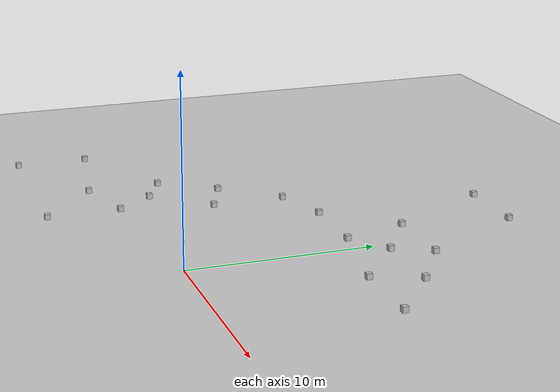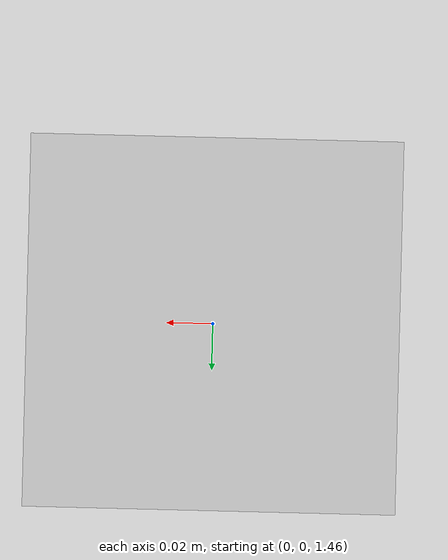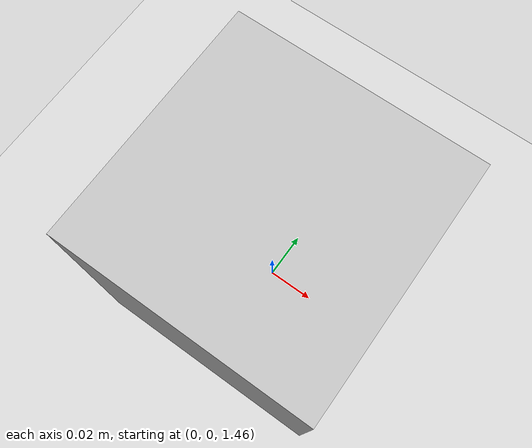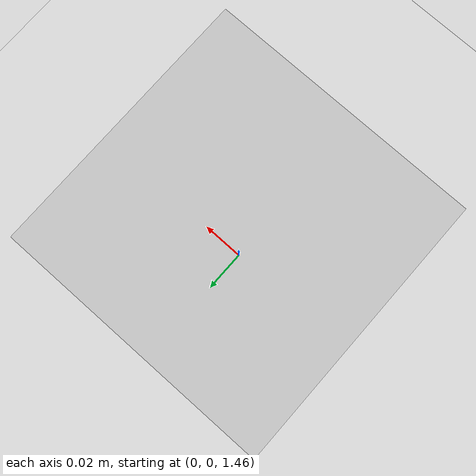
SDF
<sdf version="1.5">
 <world name="my_world">
  <include><uri>model://ground_plane</uri></include>
  <include>
   <uri>model://cube</uri>
   <pose>2 0 0 0 0 0</pose>
   <static>true</static>
   <name>wall1</name>
   <plugin name="collision" filename="libgazebo_ros_kobuki.so"/>
   <plugin name="visual" filename="libgazebo_ros_kobuki.so"/>
  </include>
  <include>
   <uri>model://cube</uri>
   <pose>0 2 0 0 0 1.5708</pose>
   <static>true</static>
   <name>wall2</name>
   <plugin name="collision" filename="libgazebo_ros_kobuki.so"/>
   <plugin name="visual" filename="libgazebo_ros_kobuki.so"/>
  </include>
  <include>
   <uri>model://cube</uri>
   <pose>-2 0 0 0 0 0</pose>
   <static>true</static>
   <name>wall3</name>
   <plugin name="collision" filename="libgazebo_ros_kobuki.so"/>
   <plugin name="visual" filename="libgazebo_ros_kobuki.so"/>
  </include>
  <include>
   <uri>model://cube</uri>
   <pose>0 -2 0 0 0 1.5708</pose>
   <static>true</static>
   <name>wall4</name>
   <plugin name="collision" filename="libgazebo_ros_kobuki.so"/>
   <plugin name="visual" filename="libgazebo_ros_kobuki.so"/>
  </include>
  <include><uri>model://sun</uri><pose>0 0 10 0 0 0</pose></include>
  <include><uri>model://camera</uri><pose>0 0 1.5 0 0 0</pose></include>
 </world>
</sdf>

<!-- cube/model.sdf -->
<sdf version="1.5">
    <model name="cube">
        <static>true</static>
        <link name="link">
            <collision name="collision1">
                <pose>0 12.5 0.1 0 0 0</pose>
                <geometry>
                    <mesh>
                        <uri>model://cube/meshes/cube.dae</uri>
                    </mesh>
                </geometry>
            </collision>
            <visual name="visual1">

              <pose>0 12.5 0.1 0 0 0</pose>
              <geometry>
              <mesh>
                 <uri>model://cube/meshes/cube.dae</uri>
              </mesh>
              </geometry>

              <material>
                  <script>
                      <uri>model://cube/materials/scripts</uri>
                      <uri>model://cube/materials/textures</uri>
                      <name>cubeMat/Diffuse</name>
                  </script>
              </material>
             </visual>

             <collision name="collision2">
                <pose>3 10.5 0.1 0 0 0</pose>
                <geometry>
                    <mesh>
                        <uri>model://cube/meshes/cube.dae</uri>
                    </mesh>
                </geometry>
            </collision>
            <visual name="visual2">

              <pose>3 10.5 0.1 0 0 0</pose>
              <geometry>
              <mesh>
                 <uri>model://cube/meshes/cube.dae</uri>
              </mesh>
              </geometry>

              <material>
                  <script>
                      <uri>model://cube/materials/scripts</uri>
                      <uri>model://cube/materials/textures</uri>
                      <name>cubeMat/Diffuse</name>
                  </script>
              </material>
             </visual>

             <collision name="collision3">
                <pose>-3 9 0.1 0 0 0</pose>
                <geometry>
                    <mesh>
                        <uri>model://cube/meshes/cube.dae</uri>
                    </mesh>
                </geometry>
            </collision>
            <visual name="visual3">

              <pose>-3 9 0.1 0 0 0</pose>
              <geometry>
              <mesh>
                 <uri>model://cube/meshes/cube.dae</uri>
              </mesh>
              </geometry>

              <material>
                  <script>
                      <uri>model://cube/materials/scripts</uri>
                      <uri>model://cube/materials/textures</uri>
                      <name>cubeMat/Diffuse</name>
                  </script>
              </material>
             </visual>

             <collision name="collision4">
                <pose>6 8 0.1 0 0 0</pose>
                <geometry>
                    <mesh>
                        <uri>model://cube/meshes/cube.dae</uri>
                    </mesh>
                </geometry>
            </collision>
            <visual name="visual4">

              <pose>6 8 0.1 0 0 0</pose>
              <geometry>
              <mesh>
                 <uri>model://cube/meshes/cube.dae</uri>
              </mesh>
              </geometry>

              <material>
                  <script>
                      <uri>model://cube/materials/scripts</uri>
                      <uri>model://cube/materials/textures</uri>
                      <name>cubeMat/Diffuse</name>
                  </script>
              </material>
             </visual>

             <collision name="collision5">
                <pose>-3 18.3 0.1 0 0 0</pose>
                <geometry>
                    <mesh>
                        <uri>model://cube/meshes/cube.dae</uri>
                    </mesh>
                </geometry>
            </collision>
            <visual name="visual5">

              <pose>-3 18.3 0.1 0 0 0</pose>
              <geometry>
              <mesh>
                 <uri>model://cube/meshes/cube.dae</uri>
              </mesh>
              </geometry>

              <material>
                  <script>
                      <uri>model://cube/materials/scripts</uri>
                      <uri>model://cube/materials/textures</uri>
                      <name>cubeMat/Diffuse</name>
                  </script>
              </material>
             </visual>
        </link>
    </model>
</sdf>

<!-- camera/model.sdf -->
<sdf version="1.5">
  <model name="camera">
    <pose>0 0 0.05 0 0 0</pose>
    <link name="link">
      <inertial>
        <mass>0.1</mass>
        <inertia>
          <ixx>0.000166667</ixx>
          <iyy>0.000166667</iyy>
          <izz>0.000166667</izz>
        </inertia>
      </inertial>
      <collision name="collision">
        <geometry>
          <box>
            <size>0.1 0.1 0.1</size>
          </box>
        </geometry>
      </collision>
      <visual name="visual">
        <geometry>
          <box>
            <size>0.1 0.1 0.1</size>
          </box>
        </geometry>
      </visual>
      <sensor name="camera" type="camera">
        <camera>
          <horizontal_fov>1.047</horizontal_fov>
          <image>
            <width>320</width>
            <height>240</height>
          </image>
          <clip>
            <near>0.1</near>
            <far>100</far>
          </clip>
        </camera>
        <always_on>1</always_on>
        <update_rate>30</update_rate>
        <visualize>true</visualize>
      </sensor>
    </link>
  </model>
</sdf>
